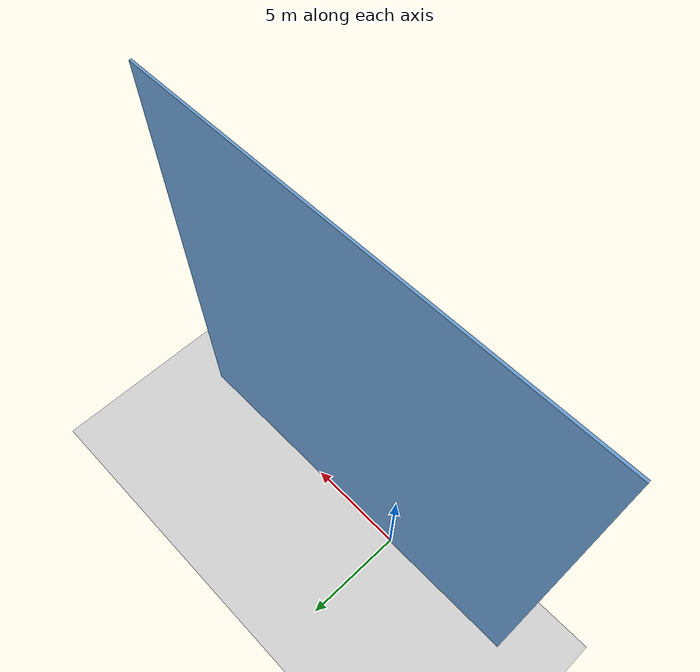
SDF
<?xml version="1.0" ?>
<sdf version="1.9">
  <world name="facade_world">
    <gravity>0 0 -9.81</gravity>

    <!-- ground -->
    <model name="ground"><static>true</static>
      <link name="link">
        <collision name="col"><geometry><plane><normal>0 0 1</normal></plane></geometry></collision>
        <visual name="vis"><geometry><plane><normal>0 0 1</normal></plane></geometry></visual>
      </link>
    </model>

    <!-- vertical glass wall -->
    <model name="glass_facade"><static>true</static>
      <link name="panel">
        <pose>3 0 10 0 1.5708 0</pose> <!-- 3m in + vertical -->
        <collision name="col"><geometry><box><size>20 0.1 20</size></box></geometry></collision>
        <visual name="vis"><geometry><box><size>20 0.1 20</size></box></geometry>
          <material><ambient>0.4 0.6 0.8 1</ambient><diffuse>0.4 0.6 0.8 1</diffuse></material>
        </visual>
      </link>
    </model>

    <scene><ambient>0.4 0.4 0.4 1</ambient></scene>
    <physics type="ode"/>
  </world>
</sdf>
